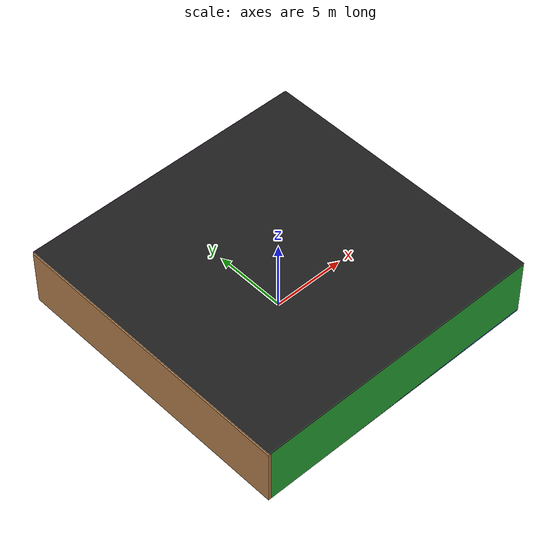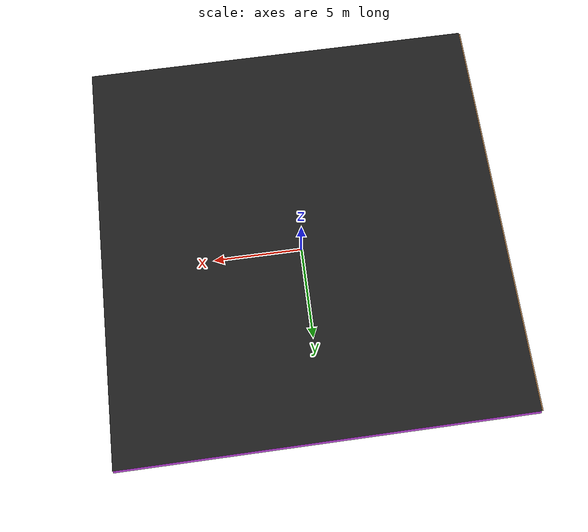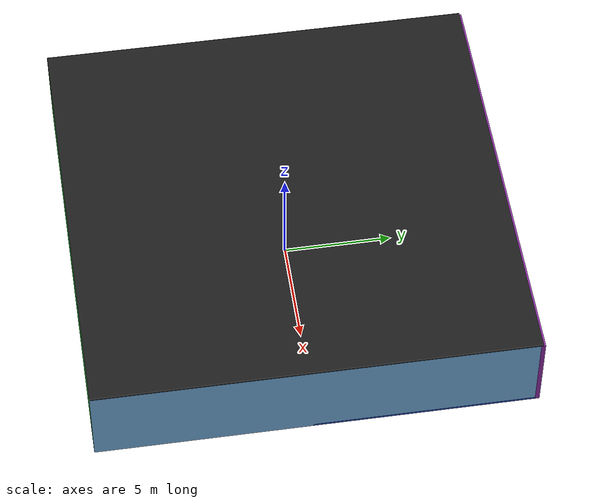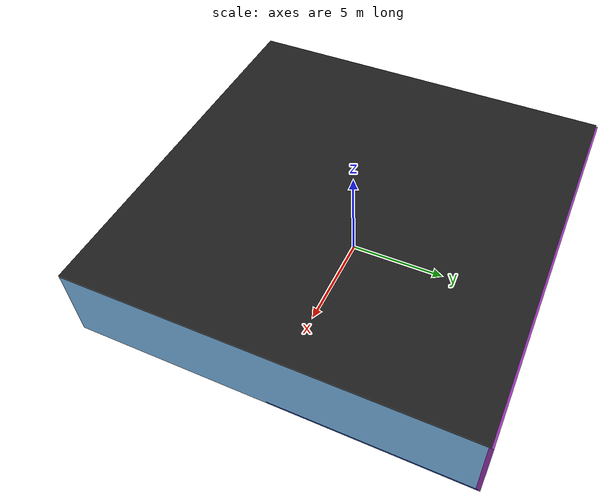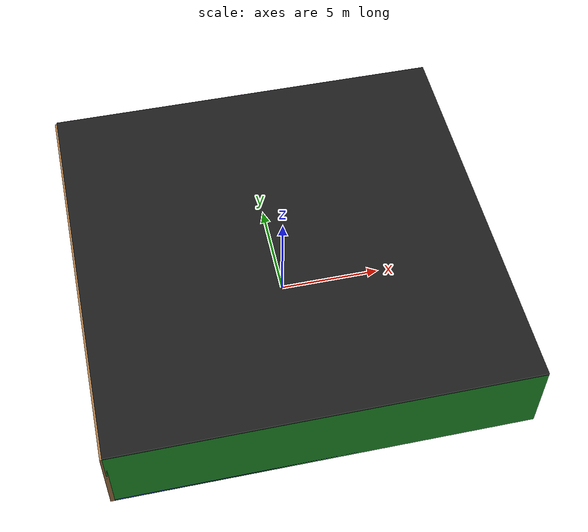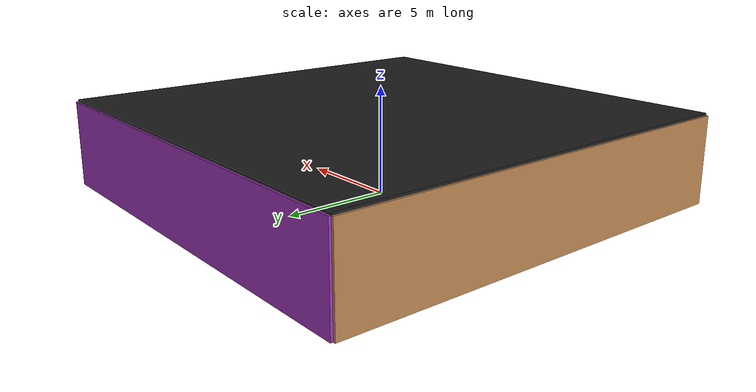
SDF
<sdf version="1.4">
 <world name="default">
  <physics type="ode">
   <max_step_size>0.001</max_step_size>
   <real_time_factor>1</real_time_factor>
   <real_time_update_rate>1000</real_time_update_rate>
   <gravity>0 0 -9.8</gravity>
  </physics>
  <scene><ambient>0.4 0.4 0.4 1</ambient><background>0.7 0.7 0.7 1</background><shadows>1</shadows></scene>
  <model name="Surrounding">
   <static>1</static>
   <link name="Ceiling">
    <collision name="Ceiling_Collision"><geometry><box><size>20 20 0.1</size></box></geometry></collision>
    <visual name="Ceiling_Visual">
     <geometry><box><size>20 20 0.1</size></box></geometry>
     <material>
      <script><uri>file://media/materials/scripts/gazebo.material</uri><name>Gazebo/FlatBlack</name></script>
     </material>
    </visual>
    <pose>0 0 4.05 0 0 0</pose>
   </link>
   <link name="Wall_South">
    <collision name="Wall_South_Collision">
     <geometry><box><size>20 0 4</size></box></geometry>
     <pose>0 0 2 0 -0 0</pose>
    </collision>
    <visual name="Wall_South_Visual">
     <pose>0 0 2 0 -0 0</pose>
     <geometry><box><size>20 0 4</size></box></geometry>
     <material>
      <script><uri>file://media/materials/scripts/gazebo.material</uri><name>Gazebo/Green</name></script>
     </material>
    </visual>
    <velocity_decay><linear>0</linear><angular>0</angular></velocity_decay>
    <pose>0 -10 0 0 -0 0</pose>
   </link>
   <link name="Wall_East">
    <collision name="Wall_21_Collision">
     <geometry><box><size>20 0 4</size></box></geometry>
     <pose>0 0 2 0 -0 0</pose>
    </collision>
    <visual name="Wall_21_Visual">
     <pose>0 0 2 0 -0 0</pose>
     <geometry><box><size>20 0 4</size></box></geometry>
     <material>
      <script><uri>file://media/materials/scripts/gazebo.material</uri><name>Gazebo/SkyBlue</name></script>
     </material>
    </visual>
    <velocity_decay><linear>0</linear><angular>0</angular></velocity_decay>
    <pose>10 0 0 0 -0 1.5708</pose>
   </link>
   <link name="Wall_North">
    <collision name="Wall_22_Collision">
     <geometry><box><size>20 0.2 4</size></box></geometry>
     <pose>0 0 2 0 -0 0</pose>
    </collision>
    <visual name="Wall_22_Visual">
     <pose>0 0 2 0 -0 0</pose>
     <geometry><box><size>20 0.2 4</size></box></geometry>
     <material>
      <script><uri>file://media/materials/scripts/gazebo.material</uri><name>Gazebo/Purple</name></script>
     </material>
    </visual>
    <velocity_decay><linear>0</linear><angular>0</angular></velocity_decay>
    <pose>0 10 0 0 -0 0</pose>
   </link>
   <link name="Wall_West">
    <collision name="Wall_23_Collision">
     <geometry><box><size>20 0.2 4</size></box></geometry>
     <pose>0 0 2 0 -0 0</pose>
    </collision>
    <visual name="Wall_23_Visual">
     <pose>0 0 2 0 -0 0</pose>
     <geometry><box><size>20 0.2 4</size></box></geometry>
     <material>
      <script><uri>file://media/materials/scripts/gazebo.material</uri><name>Gazebo/Wood</name></script>
     </material>
    </visual>
    <velocity_decay><linear>0</linear><angular>0</angular></velocity_decay>
    <pose>-10 0 0 0 0 -1.5708</pose>
   </link>
   <link name="Ground_link">
    <collision name="collision">
     <pose>0 0 .05 0 -0 0</pose>
     <geometry><box><size>20 20 0.1</size></box></geometry>
    </collision>
    <visual name="visual">
     <pose>0 0 .05 0 -0 0</pose>
     <geometry><box><size>20 20 0.1</size></box></geometry>
     <material>
      <script><uri>file://media/materials/scripts/gazebo.material</uri><name>Gazebo/BlueGlow</name></script>
     </material>
    </visual>
   </link>
   <static>1</static>
  </model>
  <spherical_coordinates>
   <surface_model>EARTH_WGS84</surface_model>
   <latitude_deg>0</latitude_deg>
   <longitude_deg>0</longitude_deg>
   <elevation>0</elevation>
   <heading_deg>0</heading_deg>
  </spherical_coordinates>
  <light name="lightball_0" type="diffuse">
   <diffuse>0.8 0.8 0.8 1</diffuse>
   <specular>0.2 0.2 0.2 1</specular>
   <attenuation>
    <range>100</range>
    <constant>0.7</constant>
    <linear>0.01</linear>
    <quadratic>0.001</quadratic>
   </attenuation>
   <direction>-0.5 0.1 -0.9</direction>
   <pose>-8.21520030218 2.49253103694 3.23365509403 0 0 0</pose>
  </light>
  <light name="lightball_1" type="diffuse">
   <diffuse>0.8 0.8 0.8 1</diffuse>
   <specular>0.2 0.2 0.2 1</specular>
   <attenuation>
    <range>100</range>
    <constant>0.7</constant>
    <linear>0.01</linear>
    <quadratic>0.001</quadratic>
   </attenuation>
   <direction>-0.5 0.1 -0.9</direction>
   <pose>-9.93532062761 4.24331651822 3.10914170271 0 0 0</pose>
  </light>
  <light name="lightball_2" type="diffuse">
   <diffuse>0.8 0.8 0.8 1</diffuse>
   <specular>0.2 0.2 0.2 1</specular>
   <attenuation>
    <range>100</range>
    <constant>0.7</constant>
    <linear>0.01</linear>
    <quadratic>0.001</quadratic>
   </attenuation>
   <direction>-0.5 0.1 -0.9</direction>
   <pose>-5.19558425474 8.63909558782 1.30192722032 0 0 0</pose>
  </light>
  <light name="lightball_3" type="diffuse">
   <diffuse>0.8 0.8 0.8 1</diffuse>
   <specular>0.2 0.2 0.2 1</specular>
   <attenuation>
    <range>100</range>
    <constant>0.7</constant>
    <linear>0.01</linear>
    <quadratic>0.001</quadratic>
   </attenuation>
   <direction>-0.5 0.1 -0.9</direction>
   <pose>-4.72467438804 -0.534135026531 2.41421742423 0 0 0</pose>
  </light>
  <light name="lightball_4" type="diffuse">
   <diffuse>0.8 0.8 0.8 1</diffuse>
   <specular>0.2 0.2 0.2 1</specular>
   <attenuation>
    <range>100</range>
    <constant>0.7</constant>
    <linear>0.01</linear>
    <quadratic>0.001</quadratic>
   </attenuation>
   <direction>-0.5 0.1 -0.9</direction>
   <pose>-2.10580934145 -4.41200493926 1.01006298354 0 0 0</pose>
  </light>
  <light name="lightball_5" type="diffuse">
   <diffuse>0.8 0.8 0.8 1</diffuse>
   <specular>0.2 0.2 0.2 1</specular>
   <attenuation>
    <range>100</range>
    <constant>0.7</constant>
    <linear>0.01</linear>
    <quadratic>0.001</quadratic>
   </attenuation>
   <direction>-0.5 0.1 -0.9</direction>
   <pose>9.67189833579 -5.63057520374 3.69832157481 0 0 0</pose>
  </light>
  <light name="lightball_6" type="diffuse">
   <diffuse>0.8 0.8 0.8 1</diffuse>
   <specular>0.2 0.2 0.2 1</specular>
   <attenuation>
    <range>100</range>
    <constant>0.7</constant>
    <linear>0.01</linear>
    <quadratic>0.001</quadratic>
   </attenuation>
   <direction>-0.5 0.1 -0.9</direction>
   <pose>7.81333147008 -1.45889346313 2.49165696377 0 0 0</pose>
  </light>
  <include>
   <uri>model://robocup_3Dsim_goal</uri>
   <pose>-8.27219763331 -7.4985963061 0 0 0 0.558780392925</pose>
  </include>
  <include>
   <uri>model://construction_cone</uri>
   <pose>-4.74780990991 -6.98015632039 0 0 0 0.0628876117117</pose>
  </include>
  <include><uri>model://table</uri><pose>-4.65234425066 -2.26730913393 0 0 0 1.49778810075</pose></include>
  <include>
   <uri>model://textured_shapes</uri>
   <pose>-5.03089402942 1.74303979553 0 0 0 1.13944102184</pose>
  </include>
  <include>
   <uri>model://construction_cone</uri>
   <pose>-1.6119534727 -5.14597772291 0 0 0 0.171536659302</pose>
  </include>
  <include>
   <uri>model://textured_shapes</uri>
   <pose>-1.72239083724 2.02568652139 0 0 0 2.06430032832</pose>
  </include>
  <include><uri>model://cabinet</uri><pose>-1.22805002583 3.99677532904 0 0 0 1.88773722772</pose></include>
  <include>
   <uri>model://robocup_3Dsim_goal</uri>
   <pose>-1.7083131378 7.12392941176 0 0 0 2.46950476717</pose>
  </include>
  <include>
   <uri>model://textured_shapes</uri>
   <pose>2.15388964788 4.32899817169 0 0 0 2.07173275566</pose>
  </include>
  <include><uri>model://cabinet</uri><pose>4.0433594138 1.30252656729 0 0 0 1.77658946491</pose></include>
 </world>
</sdf>

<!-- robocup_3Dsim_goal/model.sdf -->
<sdf version="1.5">
  <model name="robocup_3d_goal">
    <static>true</static>
    <link name="left_post">
      <pose>0 1.05 0.45 0 0 0</pose>
      <collision name="collision">
        <geometry>
          <cylinder>
            <radius>0.05</radius>
            <length>0.9</length>
          </cylinder>
        </geometry>
      </collision>
      <visual name="visual">
        <geometry>
          <cylinder>
            <radius>0.05</radius>
            <length>0.9</length>
          </cylinder>
        </geometry>
        <material>
          <script>
            <uri>file://media/materials/scripts/gazebo.material</uri>
            <name>Gazebo/ZincYellow</name>
          </script>
        </material>
      </visual>
    </link>
    <link name="left_support_horiz_lower">
      <pose>0.30 1.05 0.01 0 0 0</pose>
      <collision name="collision">
        <geometry>
          <box>
            <size>0.50 0.02 0.02</size>
          </box>
        </geometry>
      </collision>
      <visual name="visual">
        <geometry>
          <box>
            <size>0.50 0.02 0.02</size>
          </box>
        </geometry>
        <material>
          <script>
            <uri>file://media/materials/scripts/gazebo.material</uri>
            <name>Gazebo/White</name>
          </script>
        </material>
      </visual>
    </link>
    <link name="left_support_horiz_upper">
      <pose>0.30 1.05 0.79 0 0 0</pose>
      <collision name="collision">
        <geometry>
          <box>
            <size>0.50 0.02 0.02</size>
          </box>
        </geometry>
      </collision>
      <visual name="visual">
        <geometry>
          <box>
            <size>0.50 0.02 0.02</size>
          </box>
        </geometry>
        <material>
          <script>
            <uri>file://media/materials/scripts/gazebo.material</uri>
            <name>Gazebo/White</name>
          </script>
        </material>
      </visual>
    </link>
    <link name="left_support_vertical">
      <pose>0.56 1.05 0.4 0 1.5708 0</pose>
      <collision name="collision">
        <geometry>
          <box>
            <size>0.80 0.02 0.02</size>
          </box>
        </geometry>
      </collision>
      <visual name="visual">
        <geometry>
          <box>
            <size>0.80 0.02 0.02</size>
          </box>
        </geometry>
        <material>
          <script>
            <uri>file://media/materials/scripts/gazebo.material</uri>
            <name>Gazebo/White</name>
          </script>
        </material>
      </visual>
    </link>
    <link name="right_support_horiz_lower">
      <pose>0.30 -1.05 0.01 0 0 0</pose>
      <collision name="collision">
        <geometry>
          <box>
            <size>0.50 0.02 0.02</size>
          </box>
        </geometry>
      </collision>
      <visual name="visual">
        <geometry>
          <box>
            <size>0.50 0.02 0.02</size>
          </box>
        </geometry>
        <material>
          <script>
            <uri>file://media/materials/scripts/gazebo.material</uri>
            <name>Gazebo/White</name>
          </script>
        </material>
      </visual>
    </link>
    <link name="right_support_horiz_upper">
      <pose>0.30 -1.05 0.79 0 0 0</pose>
      <collision name="collision">
        <geometry>
          <box>
            <size>0.50 0.02 0.02</size>
          </box>
        </geometry>
      </collision>
      <visual name="visual">
        <geometry>
          <box>
            <size>0.50 0.02 0.02</size>
          </box>
        </geometry>
        <material>
          <script>
            <uri>file://media/materials/scripts/gazebo.material</uri>
            <name>Gazebo/White</name>
          </script>
        </material>
      </visual>
    </link>
    <link name="right_support_vertical">
      <pose>0.56 -1.05 0.4 0 1.5708 0</pose>
      <collision name="collision">
        <geometry>
          <box>
            <size>0.80 0.02 0.02</size>
          </box>
        </geometry>
      </collision>
      <visual name="visual">
        <geometry>
          <box>
            <size>0.80 0.02 0.02</size>
          </box>
        </geometry>
        <material>
          <script>
            <uri>file://media/materials/scripts/gazebo.material</uri>
            <name>Gazebo/White</name>
          </script>
        </material>
      </visual>
    </link>
    <link name="center_support_horiz_lower">
      <pose>0.56 0 0.01 0 1.5708 0</pose>
      <collision name="collision">
        <geometry>
          <box>
            <size>0.02 2.08 0.02</size>
          </box>
        </geometry>
      </collision>
      <visual name="visual">
        <geometry>
          <box>
            <size>0.02 2.08 0.02</size>
          </box>
        </geometry>
        <material>
          <script>
            <uri>file://media/materials/scripts/gazebo.material</uri>
            <name>Gazebo/White</name>
          </script>
        </material>
      </visual>
    </link>
    <link name="center_support_horiz_upper">
      <pose>0.56 0 0.79 0 1.5708 0</pose>
      <collision name="collision">
        <geometry>
          <box>
            <size>0.02 2.08 0.02</size>
          </box>
        </geometry>
      </collision>
      <visual name="visual">
        <geometry>
          <box>
            <size>0.02 2.08 0.02</size>
          </box>
        </geometry>
        <material>
          <script>
            <uri>file://media/materials/scripts/gazebo.material</uri>
            <name>Gazebo/White</name>
          </script>
        </material>
      </visual>
    </link>
    <link name="right_post">
      <pose>0 -1.05 0.45 0 0 0</pose>
      <collision name="collision">
        <geometry>
          <cylinder>
            <radius>0.05</radius>
            <length>0.9</length>
          </cylinder>
        </geometry>
      </collision>
      <visual name="visual">
        <geometry>
          <cylinder>
            <radius>0.05</radius>
            <length>0.9</length>
          </cylinder>
        </geometry>
        <material>
          <script>
            <uri>file://media/materials/scripts/gazebo.material</uri>
            <name>Gazebo/ZincYellow</name>
          </script>
        </material>
      </visual>
    </link>
    <link name="crossbar">
      <pose>0 0 0.85 1.57 1.57 0</pose>
      <collision name="collision">
        <geometry>
          <cylinder>
            <radius>0.05</radius>
            <length>2.0</length>
          </cylinder>
        </geometry>
      </collision>
      <visual name="visual">
        <geometry>
          <cylinder>
            <radius>0.05</radius>
            <length>2.0</length>
          </cylinder>
        </geometry>
        <material>
          <script>
            <uri>file://media/materials/scripts/gazebo.material</uri>
            <name>Gazebo/ZincYellow</name>
          </script>
        </material>
      </visual>
    </link>
    <link name="center_net">
      <pose>0.56 0 0.40 0 0 0</pose>
      <collision name="collision">
        <geometry>
          <box>
            <size>0.01 2.1 0.80</size>
          </box>
        </geometry>
      </collision>
      <visual name="visual">
        <geometry>
          <box>
            <size>0.01 2.1 0.80</size>
          </box>
        </geometry>
        <material>
          <script>
            <uri>model://../model_source/models/robocup09_spl_field/materials/scripts/</uri>
            <uri>model://../model_source/models/robocup09_spl_field/materials/textures/</uri>
            <name>RoboCup/Net</name>
          </script>
        </material>
      </visual>
    </link>
    <link name="left_net">
      <pose>0.30 1.05 0.40 0 0 0</pose>
      <collision name="collision">
        <geometry>
          <box>
            <size>0.50 0.01 0.76</size>
          </box>
        </geometry>
      </collision>
      <visual name="visual">
        <geometry>
          <box>
            <size>0.50 0.01 0.76</size>
          </box>
        </geometry>
        <material>
          <script>
            <uri>model://../model_source/models/robocup09_spl_field/materials/scripts/</uri>
            <uri>model://../model_source/models/robocup09_spl_field/materials/textures/</uri>
            <name>RoboCup/Net</name>
          </script>
        </material>
      </visual>
    </link>
    <link name="right_net">
      <pose>0.30 -1.05 0.40 0 0 0</pose>
      <collision name="collision">
        <geometry>
          <box>
            <size>0.50 0.01 0.76</size>
          </box>
        </geometry>
      </collision>
      <visual name="visual">
        <geometry>
          <box>
            <size>0.50 0.01 0.76</size>
          </box>
        </geometry>
        <material>
          <script>
            <uri>model://../model_source/models/robocup09_spl_field/materials/scripts/</uri>
            <uri>model://../model_source/models/robocup09_spl_field/materials/textures/</uri>
            <name>RoboCup/Net</name>
          </script>
        </material>
      </visual>
    </link>
  </model>
</sdf>

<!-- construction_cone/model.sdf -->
<sdf version="1.5">
  <model name="Construction Cone">
    <link name="link">
      <collision name="collision">
        <geometry>
          <mesh>
            <scale>10 10 10</scale>
            <uri>file://isr-testbed/construction_cone/meshes/construction_cone.dae</uri>
          </mesh>
        </geometry>
      </collision>
      <visual name="visual">
        <geometry>
          <mesh>
            <scale>10 10 10</scale>
            <uri>file://isr-testbed/construction_cone/meshes/construction_cone.dae</uri>
          </mesh>
        </geometry>
      </visual>
    </link>
  </model>
</sdf>

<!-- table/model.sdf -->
<sdf version="1.5">
  <model name="table">
    <static>true</static>
    <link name="link">
      <collision name="surface">
        <pose>0 0 1.0 0 0 0</pose>
        <geometry>
          <box>
            <size>1.5 0.8 0.03</size>
          </box>
        </geometry>
        <surface>
          <friction>
            <ode>
              <mu>0.6</mu>
              <mu2>0.6</mu2>
            </ode>
          </friction>
        </surface>
      </collision>
      <visual name="visual1">
        <pose>0 0 1.0 0 0 0</pose>
        <geometry>
          <box>
            <size>1.5 0.8 0.03</size>
          </box>
        </geometry>
        <material>
          <script>
            <uri>model://media/materials/scripts/gazebo.material</uri>
            <name>Gazebo/Wood</name>
          </script>
        </material>
      </visual>
      <collision name="front_left_leg">
        <pose>0.68 0.38 0.5 0 0 0</pose>
        <geometry>
          <cylinder>
            <radius>0.02</radius>
            <length>1.0</length>
          </cylinder>
        </geometry>
      </collision>
      <visual name="front_left_leg">
        <pose>0.68 0.38 0.5 0 0 0</pose>
        <geometry>
          <cylinder>
            <radius>0.02</radius>
            <length>1.0</length>
          </cylinder>
        </geometry>
        <material>
          <script>
            <uri>model://media/materials/scripts/gazebo.material</uri>
            <name>Gazebo/Grey</name>
          </script>
        </material>
      </visual>
      <collision name="front_right_leg">
        <pose>0.68 -0.38 0.5 0 0 0</pose>
        <geometry>
          <cylinder>
            <radius>0.02</radius>
            <length>1.0</length>
          </cylinder>
        </geometry>
      </collision>
      <visual name="front_right_leg">
        <pose>0.68 -0.38 0.5 0 0 0</pose>
        <geometry>
          <cylinder>
            <radius>0.02</radius>
            <length>1.0</length>
          </cylinder>
        </geometry>
        <material>
          <script>
            <uri>model://media/materials/scripts/gazebo.material</uri>
            <name>Gazebo/Grey</name>
          </script>
        </material>
      </visual>
      <collision name="back_right_leg">
        <pose>-0.68 -0.38 0.5 0 0 0</pose>
        <geometry>
          <cylinder>
            <radius>0.02</radius>
            <length>1.0</length>
          </cylinder>
        </geometry>
      </collision>
      <visual name="back_right_leg">
        <pose>-0.68 -0.38 0.5 0 0 0</pose>
        <geometry>
          <cylinder>
            <radius>0.02</radius>
            <length>1.0</length>
          </cylinder>
        </geometry>
        <material>
          <script>
            <uri>model://media/materials/scripts/gazebo.material</uri>
            <name>Gazebo/Grey</name>
          </script>
        </material>
      </visual>
      <collision name="back_left_leg">
        <pose>-0.68 0.38 0.5 0 0 0</pose>
        <geometry>
          <cylinder>
            <radius>0.02</radius>
            <length>1.0</length>
          </cylinder>
        </geometry>
      </collision>
      <visual name="back_left_leg">
        <pose>-0.68 0.38 0.5 0 0 0</pose>
        <geometry>
          <cylinder>
            <radius>0.02</radius>
            <length>1.0</length>
          </cylinder>
        </geometry>
        <material>
          <script>
            <uri>model://media/materials/scripts/gazebo.material</uri>
            <name>Gazebo/Grey</name>
          </script>
        </material>
      </visual>
    </link>
  </model>
</sdf>

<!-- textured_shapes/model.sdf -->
<sdf version="1.6">
  <model name="textured_shapes">
    <pose>0 0 0.5 0 0 0</pose>
    <link name="box">
      <pose>0 -1.5 0 0 0 0</pose>
      <collision name="collision">
        <geometry>
          <box>
            <size>1 1 1</size>
          </box>
        </geometry>
      </collision>
      <visual name="visual">
        <geometry>
          <box>
            <size>1 1 1</size>
          </box>
        </geometry>
        <material>
          <script>
            <uri>model://../model_source/models/textured_shapes/materials/scripts</uri>
            <uri>model://../model_source/models/textured_shapes/materials/textures</uri>
            <name>TexturedShape/Squares</name>
          </script>
        </material>
      </visual>
    </link>
    <link name="sphere">
      <collision name="collision">
        <geometry>
          <sphere>
            <radius>0.5</radius>
          </sphere>
        </geometry>
      </collision>
      <visual name="visual">
        <geometry>
          <sphere>
            <radius>0.5</radius>
          </sphere>
        </geometry>
        <material>
          <script>
            <uri>model://../model_source/models/textured_shapes/materials/scripts</uri>
            <uri>model://../model_source/models/textured_shapes/materials/textures</uri>
            <name>TexturedShape/Squares</name>
          </script>
        </material>
      </visual>
    </link>
    <link name="cylinder">
      <pose>0 1.5 0 0 0 0</pose>
      <collision name="collision">
        <geometry>
          <cylinder>
            <radius>0.5</radius>
            <length>1</length>
          </cylinder>
        </geometry>
      </collision>
      <visual name="visual">
        <geometry>
          <cylinder>
            <radius>0.5</radius>
            <length>1</length>
          </cylinder>
        </geometry>
        <material>
          <script>
            <uri>model://../model_source/models/textured_shapes/materials/scripts</uri>
            <uri>model://../model_source/models/textured_shapes/materials/textures</uri>
            <name>TexturedShape/Squares</name>
          </script>
        </material>
      </visual>
    </link>
  </model>
</sdf>

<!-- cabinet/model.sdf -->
<sdf version="1.5">
  <model name="cabinet">
    <static>true</static>
    <link name="cabinet_bottom_plate">
      <inertial>
        <pose>0 0 -1 0 0 0</pose>
        <inertia>
          <ixx>2.050000</ixx>
          <ixy>0</ixy>
          <ixz>0</ixz>
          <iyy>2.050000</iyy>
          <iyz>0</iyz>
          <izz>2.050000</izz>
        </inertia>
        <mass>25.000000</mass>
      </inertial>
      <collision name="cabinet_bottom_plate_geom">
        <pose>0 0 0.010000 0 0 0</pose>
        <geometry>
          <box>
            <size>0.450000 0.450000 0.020000</size>
          </box>
        </geometry>
      </collision>
      <visual name="cabinet_bottom_plate_geom_visual">
        <pose>0 0 0.010000 0 0 0</pose>
        <geometry>
          <box>
            <size>0.450000 0.450000 0.020000</size>
          </box>
        </geometry>
        <material>
          <script>
            <uri>model://media/materials/scripts/gazebo.material</uri>
            <name>Gazebo/Wood</name>
          </script>
        </material>
      </visual>
      <collision name="cabinet_bottom_plate_geom_cabinet_back_plate">
        <pose>0.235000 0 0.510000 0 0 0</pose>
        <geometry>
          <box>
            <size>0.020000 0.450000 1.020000</size>
          </box>
        </geometry>
      </collision>
      <visual name="cabinet_bottom_plate_geom_cabinet_back_plate_visual">
        <pose>0.235000 0 0.510000 0 0 0</pose>
        <geometry>
          <box>
            <size>0.020000 0.450000 1.020000</size>
          </box>
        </geometry>
        <material>
          <script>
            <uri>model://media/materials/scripts/gazebo.material</uri>
            <name>Gazebo/Wood</name>
          </script>
        </material>
      </visual>
      <collision name="cabinet_bottom_plate_geom_cabinet_left_plate">
        <pose>0 0.235000 0.510000 0 0 0</pose>
        <geometry>
          <box>
            <size>0.450000 0.020000 1.020000</size>
          </box>
        </geometry>
      </collision>
      <visual name="cabinet_bottom_plate_geom_cabinet_left_plate_visual">
        <pose>0 0.235000 0.510000 0 0 0</pose>
        <geometry>
          <box>
            <size>0.450000 0.020000 1.020000</size>
          </box>
        </geometry>
        <material>
          <script>
            <uri>model://media/materials/scripts/gazebo.material</uri>
            <name>Gazebo/Wood</name>
          </script>
        </material>
      </visual>
      <collision name="cabinet_bottom_plate_geom_cabinet_middle_plate">
        <pose>0 0 0.510000 0 0 0</pose>
        <geometry>
          <box>
            <size>0.450000 0.450000 0.020000</size>
          </box>
        </geometry>
      </collision>
      <visual name="cabinet_bottom_plate_geom_cabinet_middle_plate_visual">
        <pose>0 0 0.510000 0 0 0</pose>
        <geometry>
          <box>
            <size>0.450000 0.450000 0.020000</size>
          </box>
        </geometry>
        <material>
          <script>
            <uri>model://media/materials/scripts/gazebo.material</uri>
            <name>Gazebo/Wood</name>
          </script>
        </material>
      </visual>
      <collision name="cabinet_bottom_plate_geom_cabinet_right_plate">
        <pose>0 -0.235000 0.510000 0 0 0</pose>
        <geometry>
          <box>
            <size>0.450000 0.020000 1.020000</size>
          </box>
        </geometry>
      </collision>
      <visual name="cabinet_bottom_plate_geom_cabinet_right_plate_visual">
        <pose>0 -0.235000 0.510000 0 0 0</pose>
        <geometry>
          <box>
            <size>0.450000 0.020000 1.020000</size>
          </box>
        </geometry>
        <material>
          <script>
            <uri>model://media/materials/scripts/gazebo.material</uri>
            <name>Gazebo/Wood</name>
          </script>
        </material>
      </visual>
      <collision name="cabinet_bottom_plate_geom_cabinet_top_plate">
        <pose>0 0 1.010000 0 0 0</pose>
        <geometry>
          <box>
            <size>0.450000 0.450000 0.020000</size>
          </box>
        </geometry>
      </collision>
      <visual name="cabinet_bottom_plate_geom_cabinet_top_plate_visual">
        <pose>0 0 1.010000 0 0 0</pose>
        <geometry>
          <box>
            <size>0.450000 0.450000 0.020000</size>
          </box>
        </geometry>
        <material>
          <script>
            <uri>model://media/materials/scripts/gazebo.material</uri>
            <name>Gazebo/Wood</name>
          </script>
        </material>
      </visual>
    </link>
  </model>
</sdf>
